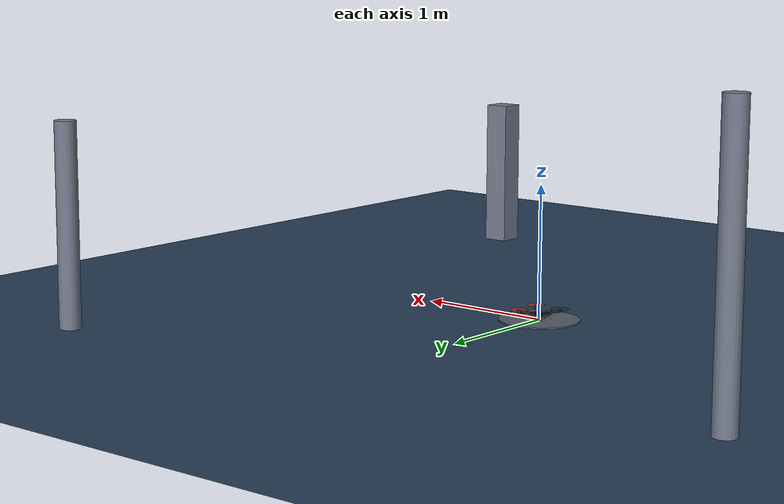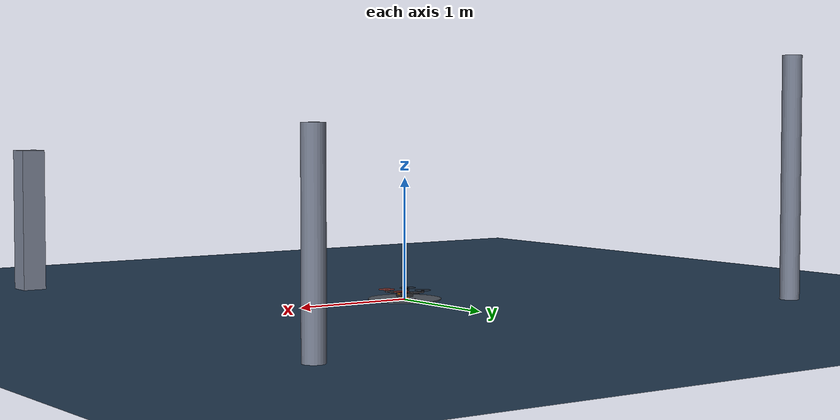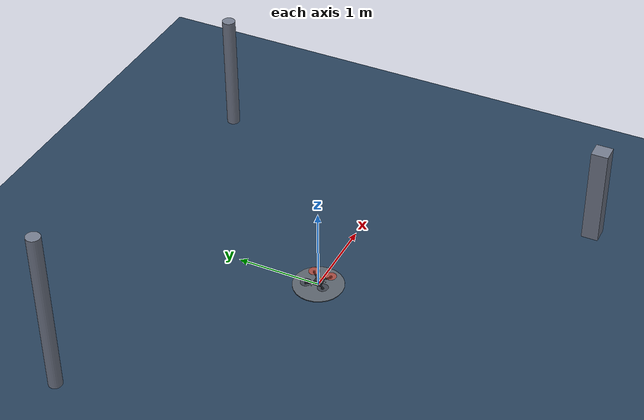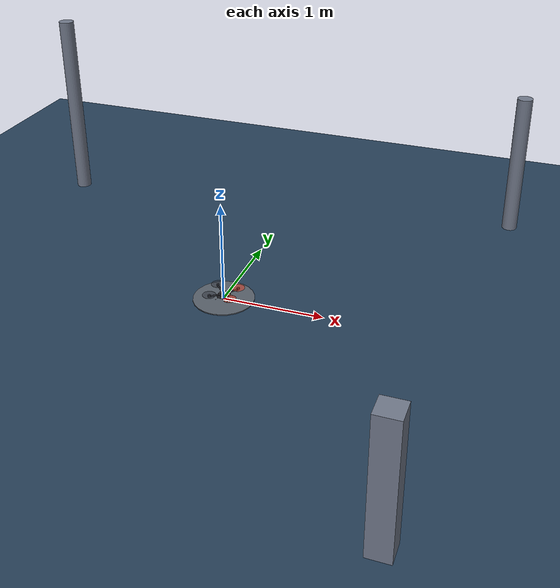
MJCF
<mujoco model="quadrotor scene">
  <compiler autolimits="true"/>
  <option timestep="0.002" density="1.225" viscosity="1.8e-5"/>

  <visual>
    <headlight ambient="0.35 0.35 0.35" diffuse="0.6 0.6 0.6"/>
  </visual>

  <default>
    <geom friction="1 0.005 0.0001"/>
    <default class="visual">
      <geom contype="0" conaffinity="0" group="2"/>
    </default>
  </default>

  <asset>
    <texture name="grid" type="2d" builtin="checker" width="512" height="512"
             mark="edge" rgb1="0.2 0.3 0.4" rgb2="0.1 0.2 0.3" markrgb="0.8 0.8 0.8"/>
    <material name="grid" texture="grid" texuniform="true" texrepeat="5 5" reflectance="0.2"/>
    <material name="pad" rgba="0.35 0.38 0.42 1"/>
    <material name="pillar" rgba="0.45 0.48 0.55 1"/>
    <material name="frame" rgba="0.15 0.15 0.17 1"/>
    <material name="accent" rgba="0.95 0.55 0.1 1"/>
    <material name="prop_front" rgba="0.9 0.25 0.15 0.55"/>
    <material name="prop_rear" rgba="0.2 0.22 0.26 0.55"/>
  </asset>

  <worldbody>
    <light pos="0 0 4" dir="0 0 -1" directional="true"/>

    <geom name="floor" type="plane" size="8 8 0.05" material="grid"/>
    <geom name="pad" type="cylinder" size="0.3 0.005" pos="0 0 0.005" material="pad"/>

    <!-- Scenery: pillars to fly around (kept clear of the built-in trajectories) -->
    <geom name="pillar1" type="cylinder" size="0.08 0.75" pos="2.4 2.4 0.75" material="pillar"/>
    <geom name="pillar2" type="cylinder" size="0.08 1.0" pos="-2.6 1.8 1.0" material="pillar"/>
    <geom name="pillar3" type="box" size="0.1 0.1 0.6" pos="2.2 -2.5 0.6" material="pillar"/>

    <body name="drone" pos="0 0 0.04">
      <freejoint name="drone_free"/>
      <site name="imu" pos="0 0 0"/>

      <!-- Core + battery -->
      <geom name="core" type="box" size="0.05 0.05 0.015" mass="0.35" material="frame"/>
      <geom name="battery" type="box" size="0.035 0.02 0.01" pos="0 0 -0.02" mass="0.15"
            material="accent"/>
      <geom name="nose" type="box" size="0.012 0.008 0.006" pos="0.055 0 0.01" mass="0.005"
            material="accent"/>

      <!-- Arms -->
      <geom name="arm1" type="capsule" size="0.008" fromto="0 0 0.012 0.106 0.106 0.022"
            mass="0.03" material="frame"/>
      <geom name="arm2" type="capsule" size="0.008" fromto="0 0 0.012 0.106 -0.106 0.022"
            mass="0.03" material="frame"/>
      <geom name="arm3" type="capsule" size="0.008" fromto="0 0 0.012 -0.106 -0.106 0.022"
            mass="0.03" material="frame"/>
      <geom name="arm4" type="capsule" size="0.008" fromto="0 0 0.012 -0.106 0.106 0.022"
            mass="0.03" material="frame"/>

      <!-- Motor pods -->
      <geom name="motor1" type="cylinder" size="0.013 0.01" pos="0.106 0.106 0.028" mass="0.04"
            material="frame"/>
      <geom name="motor2" type="cylinder" size="0.013 0.01" pos="0.106 -0.106 0.028" mass="0.04"
            material="frame"/>
      <geom name="motor3" type="cylinder" size="0.013 0.01" pos="-0.106 -0.106 0.028" mass="0.04"
            material="frame"/>
      <geom name="motor4" type="cylinder" size="0.013 0.01" pos="-0.106 0.106 0.028" mass="0.04"
            material="frame"/>

      <!-- Prop discs (visual only; front pair tinted for orientation) -->
      <geom name="prop1" class="visual" type="cylinder" size="0.065 0.0015" pos="0.106 0.106 0.04"
            mass="0.005" material="prop_front"/>
      <geom name="prop2" class="visual" type="cylinder" size="0.065 0.0015" pos="0.106 -0.106 0.04"
            mass="0.005" material="prop_front"/>
      <geom name="prop3" class="visual" type="cylinder" size="0.065 0.0015" pos="-0.106 -0.106 0.04"
            mass="0.005" material="prop_rear"/>
      <geom name="prop4" class="visual" type="cylinder" size="0.065 0.0015" pos="-0.106 0.106 0.04"
            mass="0.005" material="prop_rear"/>

      <!-- Feet -->
      <geom name="foot1" type="sphere" size="0.007" pos="0.06 0.06 -0.033" mass="0.005"/>
      <geom name="foot2" type="sphere" size="0.007" pos="0.06 -0.06 -0.033" mass="0.005"/>
      <geom name="foot3" type="sphere" size="0.007" pos="-0.06 -0.06 -0.033" mass="0.005"/>
      <geom name="foot4" type="sphere" size="0.007" pos="-0.06 0.06 -0.033" mass="0.005"/>

      <!-- Thrust application points -->
      <site name="thrust1" pos="0.106 0.106 0.028"/>
      <site name="thrust2" pos="0.106 -0.106 0.028"/>
      <site name="thrust3" pos="-0.106 -0.106 0.028"/>
      <site name="thrust4" pos="-0.106 0.106 0.028"/>
    </body>
  </worldbody>

  <actuator>
    <motor name="thrust1" site="thrust1" gear="0 0 1 0 0 0.016" ctrlrange="0 5"/>
    <motor name="thrust2" site="thrust2" gear="0 0 1 0 0 -0.016" ctrlrange="0 5"/>
    <motor name="thrust3" site="thrust3" gear="0 0 1 0 0 0.016" ctrlrange="0 5"/>
    <motor name="thrust4" site="thrust4" gear="0 0 1 0 0 -0.016" ctrlrange="0 5"/>
  </actuator>

  <sensor>
    <gyro name="gyro" site="imu"/>
    <accelerometer name="accel" site="imu"/>
    <framequat name="attitude" objtype="site" objname="imu"/>
  </sensor>
</mujoco>
